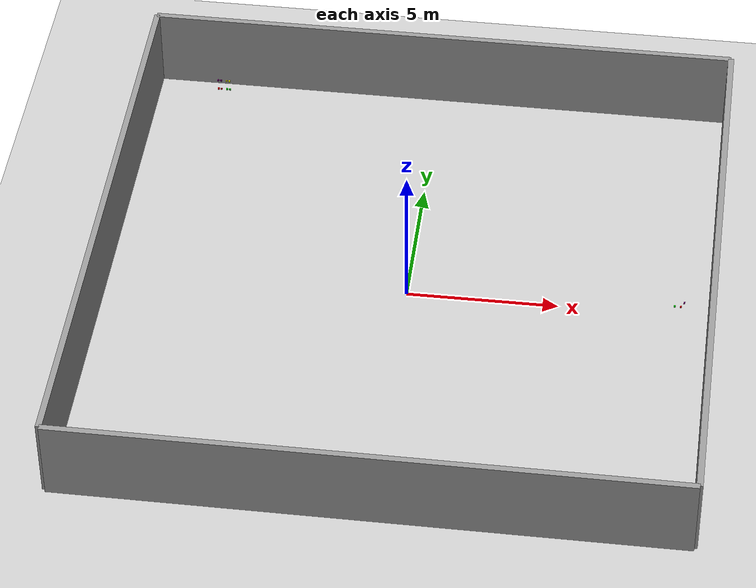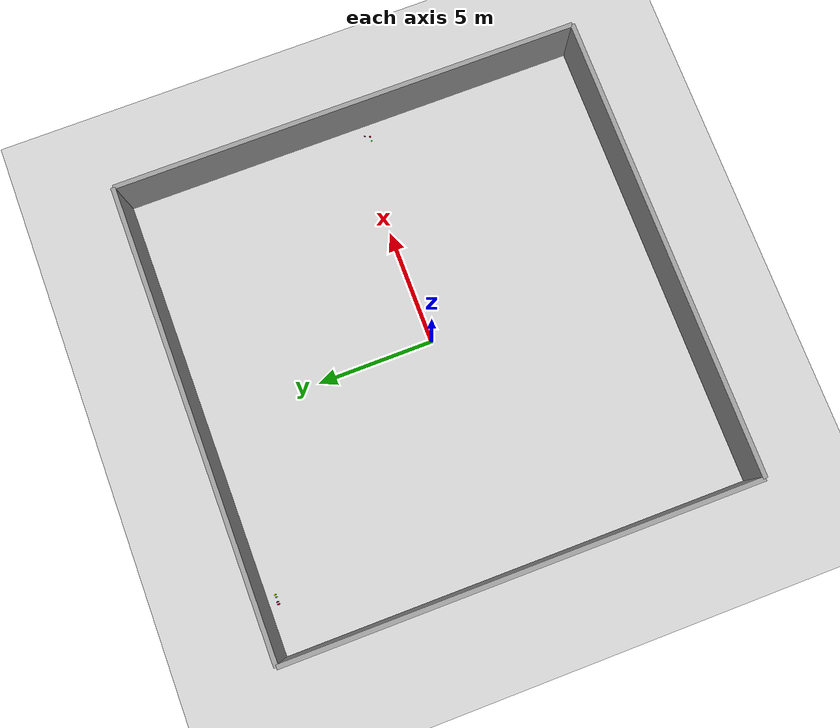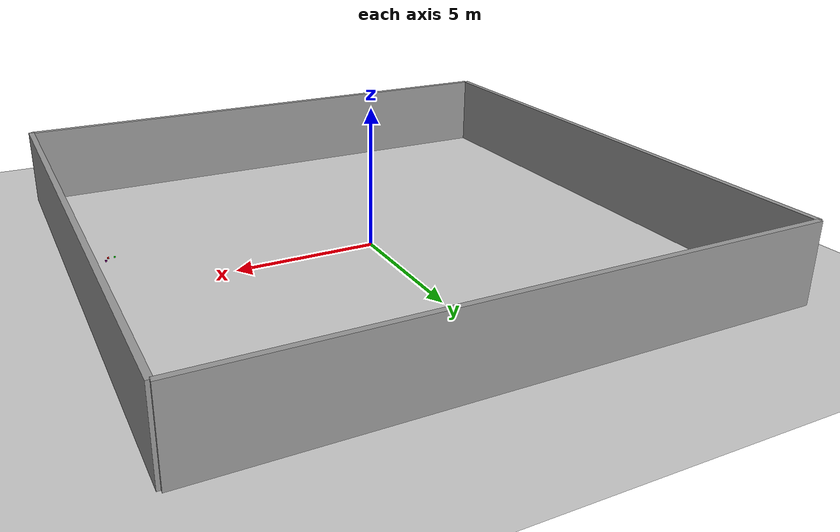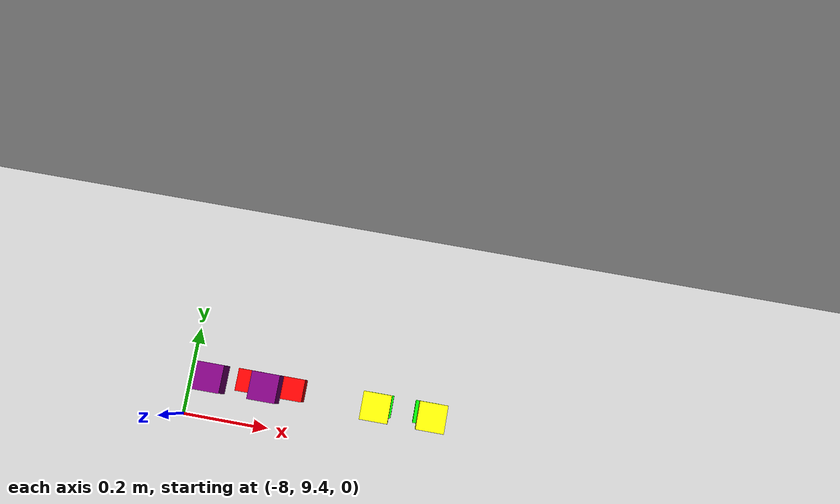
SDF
<sdf version="1.9">
 <world name="warehouse">
  <physics type="ode"><max_step_size>0.001</max_step_size><real_time_factor>1.0</real_time_factor></physics>
  <plugin name="gz::sim::systems::Physics" filename="libgz-sim-physics-system.so"/>
  <plugin name="gz::sim::systems::UserCommands" filename="libgz-sim-user-commands-system.so"/>
  <plugin name="gz::sim::systems::SceneBroadcaster" filename="libgz-sim-scene-broadcaster-system.so"/>
  <plugin name="gz::sim::systems::Sensors" filename="libgz-sim-sensors-system.so">
   <render_engine>ogre2</render_engine>
  </plugin>
  <plugin name="gz::sim::systems::Imu" filename="libgz-sim-imu-system.so"/>
  <plugin name="gz::sim::systems::NavSat" filename="libgz-sim-navsat-system.so"/>
  <scene>
   <ambient>1 1 1 1</ambient>
   <background>0.3 0.7 0.9 1</background>
   <shadows>0</shadows>
   <grid>false</grid>
  </scene>
  <model name="table_camera">
   <static>true</static>
   <link name="camera_link">
    <pose>9 -0.4 2 0 1.57 1.57</pose>
    <sensor name="rgbd_camera" type="depth">
     <update_rate>30</update_rate>
     <camera>
      <horizontal_fov>1.047</horizontal_fov>
      <image><width>640</width><height>480</height><format>R8G8B8</format></image>
      <clip><near>0.1</near><far>10</far></clip>
     </camera>
    </sensor>
    <sensor name="rgb_camera" type="camera">
     <update_rate>30</update_rate>
     <camera>
      <horizontal_fov>1.047</horizontal_fov>
      <image><width>640</width><height>480</height><format>R8G8B8</format></image>
      <clip><near>0.1</near><far>10</far></clip>
     </camera>
    </sensor>
   </link>
  </model>
  <model name="world_camera">
   <static>true</static>
   <link name="camera_link">
    <pose>-18 0 15 0 .8 0</pose>
    <sensor name="rgbd_camera" type="depth">
     <update_rate>30</update_rate>
     <camera>
      <horizontal_fov>1.047</horizontal_fov>
      <image><width>640</width><height>480</height><format>R8G8B8</format></image>
      <clip><near>0.1</near><far>30</far></clip>
     </camera>
    </sensor>
    <sensor name="rgb_camera" type="camera">
     <update_rate>30</update_rate>
     <camera>
      <horizontal_fov>1.047</horizontal_fov>
      <image><width>640</width><height>480</height><format>R8G8B8</format></image>
      <clip><near>0.1</near><far>50</far></clip>
     </camera>
    </sensor>
   </link>
  </model>
  <spherical_coordinates>
   <surface_model>EARTH_WGS84</surface_model>
   <world_frame_orientation>ENU</world_frame_orientation>
   <latitude_deg>-22.986687</latitude_deg>
   <longitude_deg>-43.202501</longitude_deg>
   <elevation>0</elevation>
   <heading_deg>0</heading_deg>
  </spherical_coordinates>
  <light type="directional" name="sun">
   <pose>0 0 10 0 0 0</pose>
   <diffuse>0.8 0.8 0.8 1</diffuse>
   <specular>0.2 0.2 0.2 1</specular>
   <attenuation>
    <range>1000</range>
    <constant>0.9</constant>
    <linear>0.01</linear>
    <quadratic>0.001</quadratic>
   </attenuation>
   <direction>-0.5 0.1 -0.9</direction>
  </light>
  <model name="ground_plane">
   <static>true</static>
   <link name="link">
    <collision name="collision">
     <geometry><plane><normal>0 0 1</normal><size>100 100</size></plane></geometry>
    </collision>
    <visual name="visual">
     <geometry><plane><normal>0 0 1</normal><size>100 100</size></plane></geometry>
     <material>
      <ambient>0.8 0.8 0.8 1</ambient>
      <diffuse>0.8 0.8 0.8 1</diffuse>
      <specular>0.8 0.8 0.8 1</specular>
     </material>
    </visual>
   </link>
  </model>
  <include>
   <name>RightWall</name>
   <pose>0 -10 0 0 0 0</pose>
   <uri>package://warehouse_world/models/grey_wall</uri>
  </include>
  <include>
   <name>LeftWall</name>
   <pose>0 10 0 0 0 0</pose>
   <uri>package://warehouse_world/models/grey_wall</uri>
  </include>
  <include>
   <name>TopWall</name>
   <pose>10 0 0 0 0 1.57</pose>
   <uri>package://warehouse_world/models/grey_wall</uri>
  </include>
  <include>
   <name>BottomWall</name>
   <pose>-10 0 0 0 0 1.57</pose>
   <uri>package://warehouse_world/models/grey_wall</uri>
  </include>
  <include>
   <name>RedBlock</name>
   <pose>9.0 -0.6 1.03 0 0 0</pose>
   <uri>package://warehouse_world/models/block_red</uri>
  </include>
  <include>
   <name>GreenBlock</name>
   <pose>8.8 -0.6 1.03 0 0 0</pose>
   <uri>package://warehouse_world/models/block_green</uri>
  </include>
  <include>
   <name>PurpleBlock</name>
   <pose>9.1 -0.4 1.03 0 0 0</pose>
   <uri>package://warehouse_world/models/block_purple</uri>
  </include>
  <include>
   <name>RedBlock_stock1</name>
   <pose>-7.85 9.5 0.07 0 0 0</pose>
   <uri>package://warehouse_world/models/block_red</uri>
  </include>
  <include>
   <name>RedBlock_stock2</name>
   <pose>-7.75 9.5 0.07 0 0 0</pose>
   <uri>package://warehouse_world/models/block_red</uri>
  </include>
  <include>
   <name>GreenBlock_stock1</name>
   <pose>-7.55 9.5 0.07 0 0 0</pose>
   <uri>package://warehouse_world/models/block_green</uri>
  </include>
  <include>
   <name>GreenBlock_stock2</name>
   <pose>-7.45 9.5 0.07 0 0 0</pose>
   <uri>package://warehouse_world/models/block_green</uri>
  </include>
  <include>
   <name>PurpleBlock_stock1</name>
   <pose>-7.85 9.5 0.45 0 0 0</pose>
   <uri>package://warehouse_world/models/block_purple</uri>
  </include>
  <include>
   <name>PurpleBlock_stock2</name>
   <pose>-7.75 9.5 0.45 0 0 0</pose>
   <uri>package://warehouse_world/models/block_purple</uri>
  </include>
  <include>
   <name>YellowBlock_stock1</name>
   <pose>-7.55 9.5 0.45 0 0 0</pose>
   <uri>package://warehouse_world/models/block_yellow</uri>
  </include>
  <include>
   <name>YellowBlock_stock2</name>
   <pose>-7.45 9.5 0.45 0 0 0</pose>
   <uri>package://warehouse_world/models/block_yellow</uri>
  </include>
 </world>
</sdf>

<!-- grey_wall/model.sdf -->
<sdf version="1.5">
  <model name="grey_wall">
    <static>true</static>
    <link name="link">
      <pose>0 0 1.4 0 0 0</pose>
      <collision name="collision">
        <geometry>
          <box>
            <size>7.5 0.2 2.8</size>
          </box>
        </geometry>
      </collision>
      <visual name="visual">
        <cast_shadows>false</cast_shadows>
        <geometry>
          <box>
            <size>20 0.2 2.8</size>
          </box>
        </geometry>
        <material>
          <script>
            <uri>model://grey_wall/materials/scripts</uri>
            <uri>model://grey_wall/materials/textures</uri>
            <name>vrc/grey_wall</name>
          </script>
        </material>
      </visual>
    </link>
  </model>
</sdf>

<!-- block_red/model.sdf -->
<sdf version="1.9">

    <model name="red_block">
      <static>false</static>
      <link name="link">
        <pose>0 0 0 0 0 0</pose>
        <collision name="collision">
          <geometry>
            <box>
              <size>0.05 0.05 0.05</size>
            </box>
          </geometry>
          <surface>
            <contact>
              <collide_without_contact>false</collide_without_contact>
            </contact>
          </surface>
        </collision>
        <inertial>
          <mass>0.1</mass>
          <inertia>
            <ixx>8.333e-05</ixx>
            <ixy>0.0</ixy>
            <ixz>0.0</ixz>
            <iyy>8.333e-05</iyy>
            <iyz>0.0</iyz>
            <izz>8.333e-05</izz>
          </inertia>
        </inertial>
        <visual name="visual">
          <geometry>
            <box>
              <size>0.05 0.05 0.05</size>
            </box>
          </geometry>
          <material>
            <ambient>1 0 0 1</ambient>
            <diffuse>1 0 0 1</diffuse>
            <specular>0.1 0.1 0.1 1</specular>
            <emissive>0 0 0 1</emissive>
          </material>
        </visual>
      </link>
    </model>
</sdf>

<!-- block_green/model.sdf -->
<sdf version="1.9">

    <model name="green_block">
      <static>false</static>
      <link name="link">
        <pose>0 0 0 0 0 0</pose>
        <collision name="collision">
          <geometry>
            <box>
              <size>0.05 0.05 0.05</size>
            </box>
          </geometry>
          <surface>
            <contact>
              <collide_without_contact>false</collide_without_contact>
            </contact>
          </surface>
        </collision>
        <inertial>
          <mass>0.1</mass>
          <inertia>
            <ixx>8.333e-05</ixx>
            <ixy>0.0</ixy>
            <ixz>0.0</ixz>
            <iyy>8.333e-05</iyy>
            <iyz>0.0</iyz>
            <izz>8.333e-05</izz>
          </inertia>
        </inertial>
        <visual name="visual">
          <geometry>
            <box>
              <size>0.05 0.05 0.05</size>
            </box>
          </geometry>
          <material>
            <ambient>0 1 0 1</ambient>
            <diffuse>0 1 0 1</diffuse>
            <specular>0.1 0.1 0.1 1</specular>
            <emissive>0 0 0 1</emissive>
          </material>
        </visual>
      </link>
    </model>
</sdf>

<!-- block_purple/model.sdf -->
<sdf version="1.9">

    <model name="purple_block">
      <static>false</static>
      <link name="link">
        <pose>0 0 0 0 0 0</pose>
        <collision name="collision">
          <geometry>
            <box>
              <size>0.05 0.05 0.05</size>
            </box>
          </geometry>
          <surface>
            <contact>
              <collide_without_contact>false</collide_without_contact>
            </contact>
          </surface>
        </collision>
        <inertial>
          <mass>0.1</mass>
          <inertia>
            <ixx>8.333e-05</ixx>
            <ixy>0.0</ixy>
            <ixz>0.0</ixz>
            <iyy>8.333e-05</iyy>
            <iyz>0.0</iyz>
            <izz>8.333e-05</izz>
          </inertia>
        </inertial>
        <visual name="visual">
          <geometry>
            <box>
              <size>0.05 0.05 0.05</size>
            </box>
          </geometry>
          <material>
            <ambient>0.5 0 0.5 1</ambient>
            <diffuse>0.5 0 0.5 1</diffuse>
            <specular>0.1 0.1 0.1 1</specular>
            <emissive>0 0 0 1</emissive>
          </material>
        </visual>
      </link>
    </model>
</sdf>

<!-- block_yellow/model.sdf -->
<sdf version="1.9">

    <model name="yellw_block">
      <static>false</static>
      <link name="link">
        <pose>0 0 0 0 0 0</pose>
        <collision name="collision">
          <geometry>
            <box>
              <size>0.05 0.05 0.05</size>
            </box>
          </geometry>
          <surface>
            <contact>
              <collide_without_contact>false</collide_without_contact>
            </contact>
          </surface>
        </collision>
        <inertial>
          <mass>0.1</mass>
          <inertia>
            <ixx>8.333e-05</ixx>
            <ixy>0.0</ixy>
            <ixz>0.0</ixz>
            <iyy>8.333e-05</iyy>
            <iyz>0.0</iyz>
            <izz>8.333e-05</izz>
          </inertia>
        </inertial>
        <visual name="visual">
          <geometry>
            <box>
              <size>0.05 0.05 0.05</size>
            </box>
          </geometry>
          <material>
            <ambient>1 1 0 1</ambient>
            <diffuse>1 1 0 1</diffuse>
            <specular>0.1 0.1 0.1 1</specular>
            <emissive>0 0 0 1</emissive>
          </material>
        </visual>
      </link>
    </model>
</sdf>
